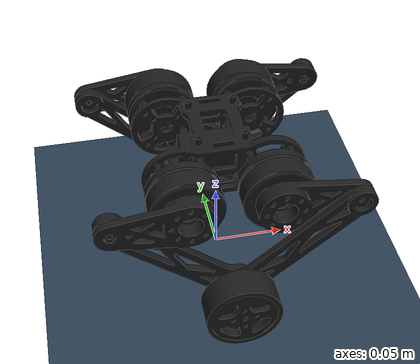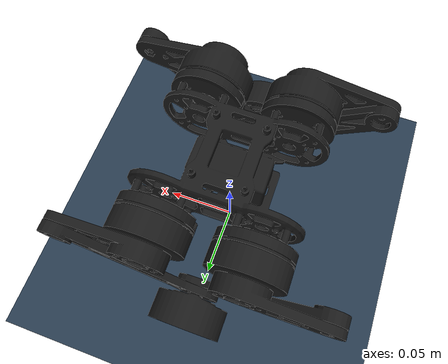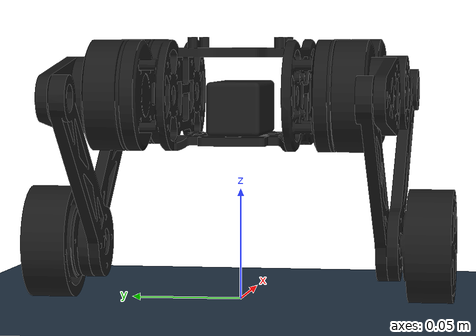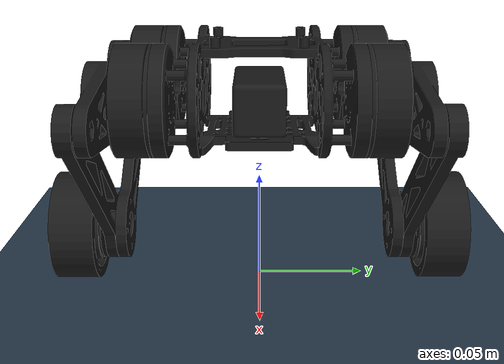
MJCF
<mujoco model="wheellegv3">
  <compiler angle="radian" meshdir="../meshes/" autolimits="true"/>

  <option timestep="0.005" tolerance="1e-6" impratio="10" solver="Newton"/>
  <default>
    <default class="wheellegv3">
      <geom type="mesh"/>
      <!-- Match the training USD: passive joint damping/friction is zero and
           the active drive behavior is represented by the MuJoCo actuators below. -->
      <joint damping="0" armature="0"/>
      <default class="visual">
        <geom contype="0" conaffinity="0" group="2" material="black"/>
      </default>
      <default class="collision">
        <!-- Disable robot self-collisions while preserving robot-ground contact. -->
        <geom
          group="3"
          mass="0"
          density="0"
          contype="1"
          conaffinity="2"
          friction="0.8 0.001 0.00005"
          solimp="0.90 0.95 0.001"
          solref="0.003 1"/>
      </default>
      <site size="0.001" rgba="0.5 0.5 0.5 0.3" group="4"/>
    </default>
  </default>

  <asset>
    <material name="black" rgba="0.1 0.1 0.1 1"/>
    <material name="white" rgba="1 1 1 1"/>

    <texture type="skybox" builtin="gradient" rgb1="0.3 0.5 0.7" rgb2="0 0 0" width="512" height="512"/>
    <texture name="texplane" type="2d" builtin="checker" rgb1=".2 .3 .4" rgb2=".1 0.15 0.2" width="512" height="512" mark="cross" markrgb=".8 .8 .8"/>
    <material name="matplane" reflectance="0.3" texture="texplane" texrepeat="1 1" texuniform="true"/>
    <mesh name="base_link" file="base_link.STL"/>
    <mesh name="right_forw_link" file="right_forw_link.STL"/>
    <mesh name="right_forw_p_link" file="right_forw_p_link.STL"/>
    <mesh name="right_wheel_link" file="right_wheel_link.STL"/>
    <mesh name="right_back_link" file="right_back_link.STL"/>
    <mesh name="right_back_p_link" file="right_back_p_link.STL"/>
    <mesh name="left_forw_link" file="left_forw_link.STL"/>
    <mesh name="left_forw_p_link" file="left_forw_p_link.STL"/>
    <mesh name="left_wheel_link" file="left_wheel_link.STL"/>
    <mesh name="left_back_link" file="left_back_link.STL"/>
    <mesh name="left_back_p_link" file="left_back_p_link.STL"/>
  </asset>

  <worldbody>
    <light directional="true" diffuse=".4 .4 .4" specular="0.1 0.1 0.1" pos="0 0 5.0" dir="0 0 -1" castshadow="false" />
    <light directional="true" diffuse=".6 .6 .6" specular="0.2 0.2 0.2" pos="0 0 4" dir="0 0 -1" />
    <geom name="ground" type="plane" pos="0 0 0" size="0 0 1" material="matplane" condim="3" friction="1.0 0.005 0.0001"/>

    <body name="base_link" pos="0 0 0.114" childclass="wheellegv3">
      <inertial
        pos="0.00000000 0.00000000 -0.02252514"
        mass="0.49424000"
        diaginertia="0.00063105 0.00050323 0.00097315" />
      <freejoint/>
      <geom class="visual" mesh="base_link"/>
      <geom size="0.06 0.04 0.04" pos="0 0 -0.02" type="box" class="collision"/>
      <body name="right_forw_link" pos="0.03 -0.0465 -0.0207477">
        <inertial pos="0.0025766 -0.0090311 0" quat="0.530068 0.530068 0.468004 0.468004" mass="0.0573051" diaginertia="2.15023e-05 1.624e-05 1.09277e-05"/>
        <joint name="right_forw_joint" pos="0 0 0" axis="0 1 0" range="0 1.57" armature="0.028"/>
        <geom class="visual" mesh="right_forw_link"/>
        <geom size="0.04 0.005 0.015" pos="0.025 -0.015 0" type="box" class="collision"/>
        <body name="right_forw_p_link" pos="0.05 -0.021 0">
          <inertial pos="-0.045053 -0.0026109 -0.038298" quat="0.642322 0.298278 0.295614 0.641143" mass="0.010927" diaginertia="1.78673e-05 1.7335e-05 5.84738e-07"/>
          <joint name="right_forw_p_joint" pos="0 0 0" axis="0 1 0" range="-3.14 3.14"/>
          <geom class="visual" mesh="right_forw_p_link"/>
          <geom size="0.065 0.0025 0.015" pos="-0.03 -0.005 -0.03" quat="0.938591 0 -0.345033 0" type="box" class="collision"/>
          <body name="right_wheel_link" pos="-0.08 0 -0.0680074">
            <inertial pos="0 -0.0176131 0" quat="0.707107 0 0 0.707107" mass="0.0573" diaginertia="1.408e-05 9.07e-06 9.07e-06"/>
            <joint name="right_wheel_joint" pos="0 0 0" axis="0 1 0"/>
            <geom class="visual" mesh="right_wheel_link"/>
            <geom size="0.0255 0.01" pos="0 -0.019 0" quat="0.707388 0.706825 0 0" type="cylinder" class="collision" friction="0.8 0.001 0.00005"/>
            <site name="right_wheel_axle_inboard_site" pos="0 -0.01 0"/>
            <site name="right_wheel_axle_outboard_site" pos="0 0.01 0"/>
          </body>
        </body>
      </body>
      <body name="right_back_link" pos="-0.03 -0.0465 -0.0207477">
        <inertial pos="-0.0025766 -0.00947936 0" quat="0.44543 0.44543 0.549174 0.549174" mass="0.0573051" diaginertia="2.17892e-05 1.685e-05 1.12408e-05"/>
        <joint name="right_back_joint" pos="0 0 0" axis="0 1 0" range="-1.57 0" armature="0.028"/>
        <geom class="visual" mesh="right_back_link"/>
        <geom size="0.04 0.0025 0.015" pos="-0.025 -0.025 0" type="box" class="collision"/>
        <body name="right_back_p_link" pos="-0.05 -0.021 0">
          <inertial pos="0.045053 0.0026109 -0.038298" quat="0.298278 0.642322 0.641143 0.295614" mass="0.010927" diaginertia="1.78673e-05 1.7335e-05 5.84738e-07"/>
          <joint name="right_back_p_joint" pos="0 0 0" axis="0 1 0" range="-3.14 3.14"/>
          <geom class="visual" mesh="right_back_p_link"/>
          <geom size="0.065 0.0025 0.015" pos="0.03 0.005 -0.03" quat="0.938583 0 0.345052 0" type="box" class="collision"/>
          <site name="right_back_axle_inboard_site" pos="0.08 -0.01 -0.0680074"/>
          <site name="right_back_axle_outboard_site" pos="0.08 0.01 -0.0680074"/>
        </body>
      </body>
      <body name="left_forw_link" pos="0.03 0.0465 -0.0207477">
      <inertial pos="0.0025766 0.0090311 0" quat="0.468004 0.468004 0.530068 0.530068" mass="0.0573051" diaginertia="2.15023e-05 1.624e-05 1.09277e-05"/>
        <joint name="left_forw_joint" pos="0 0 0" axis="0 1 0" range="0 1.57079632679" armature="0.028"/>
        <geom class="visual" mesh="left_forw_link"/>
        <geom size="0.04 0.005 0.015" pos="0.025 0.015 0" type="box" class="collision"/>
        <body name="left_forw_p_link" pos="0.05 0.021 0">
          <inertial pos="-0.045052 0.0026109 -0.038299" quat="0.641253 0.295304 0.297928 0.642517" mass="0.010927" diaginertia="1.78673e-05 1.7335e-05 5.84712e-07"/>
          <joint name="left_forw_p_joint" pos="0 0 0" axis="0 1 0" range="-3.14 3.14"/>
          <geom class="visual" mesh="left_forw_p_link"/>
          <geom size="0.065 0.0025 0.015" pos="-0.03 0.005 -0.03" quat="0.938591 0 -0.345033 0" type="box" class="collision"/>
          <body name="left_wheel_link" pos="-0.08 0 -0.068007">
            <inertial pos="0 0.0176131 0" quat="0.707107 0 0 0.707107" mass="0.0573" diaginertia="1.408e-05 9.07e-06 9.07e-06"/>
            <joint name="left_wheel_joint" pos="0 0 0" axis="0 1 0"/>
            <geom class="visual" mesh="left_wheel_link"/>
            <geom size="0.0255 0.01" pos="0 0.019 0" quat="0.707388 0.706825 0 0" type="cylinder" class="collision" friction="0.8 0.001 0.00005"/>
            <site name="left_wheel_axle_inboard_site" pos="0 -0.01 0"/>
            <site name="left_wheel_axle_outboard_site" pos="0 0.01 0"/>
          </body>
        </body>
      </body>
      <body name="left_back_link" pos="-0.03 0.0465 -0.020748">
        <inertial pos="-0.0025766 0.00947936 0" quat="0.549174 0.549174 0.44543 0.44543" mass="0.0573051" diaginertia="2.17892e-05 1.685e-05 1.12408e-05"/>
        <joint name="left_back_joint" pos="0 0 0" axis="0 1 0" range="-1.57079632679 0" armature="0.028"/>
        <geom class="visual" mesh="left_back_link"/>
        <geom size="0.04 0.0025 0.015" pos="-0.025 0.025 0" type="box" class="collision"/>
        <body name="left_back_p_link" pos="-0.05 0.021 0">
          <inertial pos="0.045052 -0.0026109 -0.038299" quat="0.295304 0.641253 0.642517 0.297928" mass="0.010927" diaginertia="1.78673e-05 1.7335e-05 5.84712e-07"/>
          <joint name="left_back_p_joint" pos="0 0 0" axis="0 1 0" range="-3.14 3.14"/>
          <geom class="visual" mesh="left_back_p_link"/>
          <geom size="0.065 0.0025 0.015" pos="0.03 -0.005 -0.03" quat="0.938583 0 0.345052 0" type="box" class="collision"/>
          <site name="left_back_axle_inboard_site" pos="0.08 -0.01 -0.068007"/>
          <site name="left_back_axle_outboard_site" pos="0.08 0.01 -0.068007"/>
        </body>
      </body>
    </body>
  </worldbody>

  <equality>
    <!-- Use two point-to-point constraints at the axle to approximate a passive hinge
         between the back lower link and wheel, instead of rigidly welding both lower links. -->
    <connect name="left_equal_inboard" site1="left_back_axle_inboard_site" site2="left_wheel_axle_inboard_site" solref="0.002 1" solimp="0.95 0.99 0.001"/>
    <connect name="left_equal_outboard" site1="left_back_axle_outboard_site" site2="left_wheel_axle_outboard_site" solref="0.002 1" solimp="0.95 0.99 0.001"/>
    <connect name="right_equal_inboard" site1="right_back_axle_inboard_site" site2="right_wheel_axle_inboard_site" solref="0.002 1" solimp="0.95 0.99 0.001"/>
    <connect name="right_equal_outboard" site1="right_back_axle_outboard_site" site2="right_wheel_axle_outboard_site" solref="0.002 1" solimp="0.95 0.99 0.001"/>
  </equality>

  <actuator>
    <motor class="wheellegv3" name="left_forw" joint="left_forw_joint" forcerange="-0.49 0.49"/>
    <motor class="wheellegv3" name="left_back" joint="left_back_joint" forcerange="-0.49 0.49"/>
    <motor class="wheellegv3" name="right_forw" joint="right_forw_joint" forcerange="-0.49 0.49"/>
    <motor class="wheellegv3" name="right_back" joint="right_back_joint" forcerange="-0.49 0.49"/>
    <motor class="wheellegv3" name="left_wheel" joint="left_wheel_joint" forcerange="-0.03 0.03"/>
    <motor class="wheellegv3" name="right_wheel" joint="right_wheel_joint" forcerange="-0.03 0.03"/>
  </actuator>

</mujoco>
